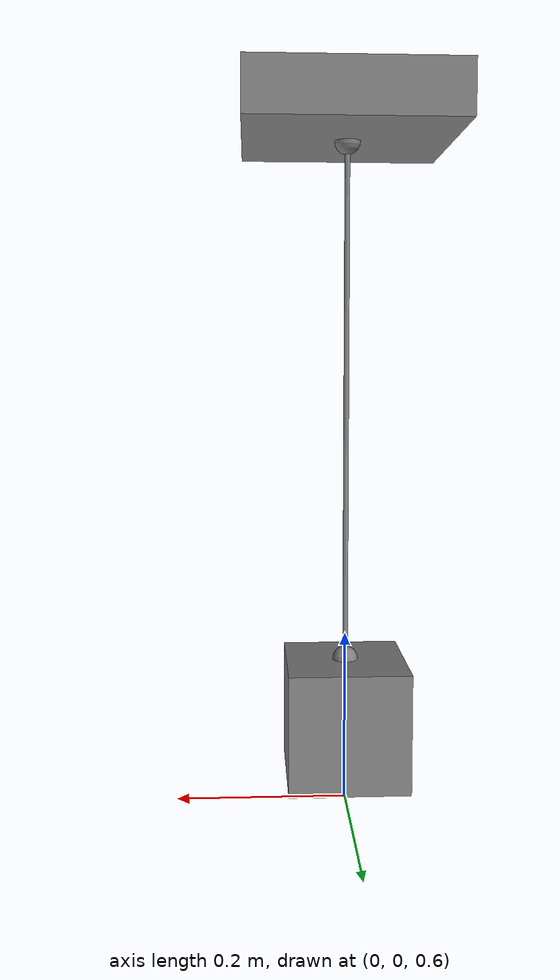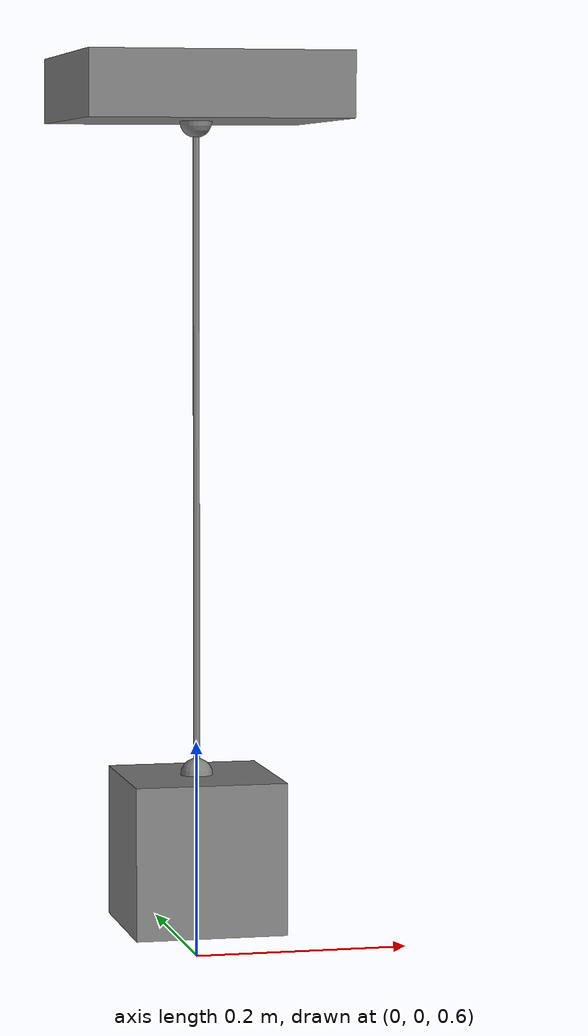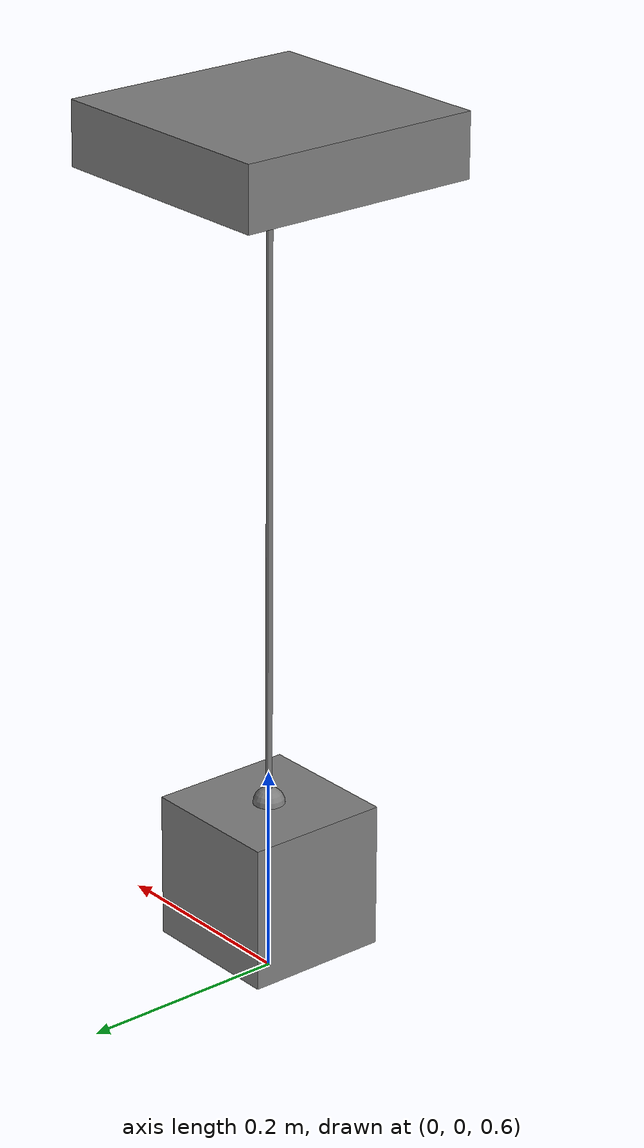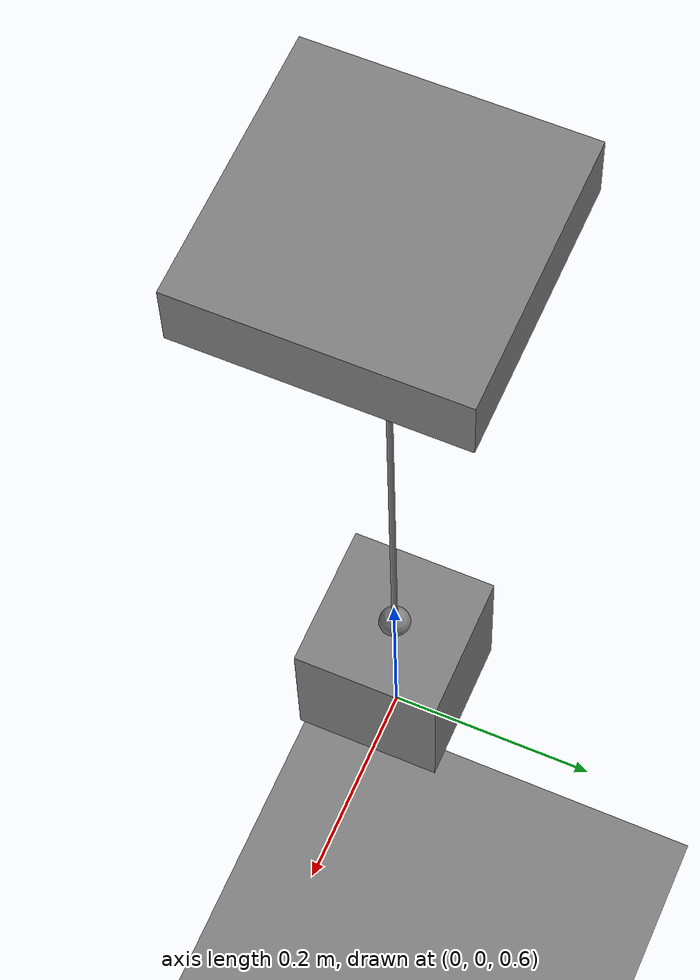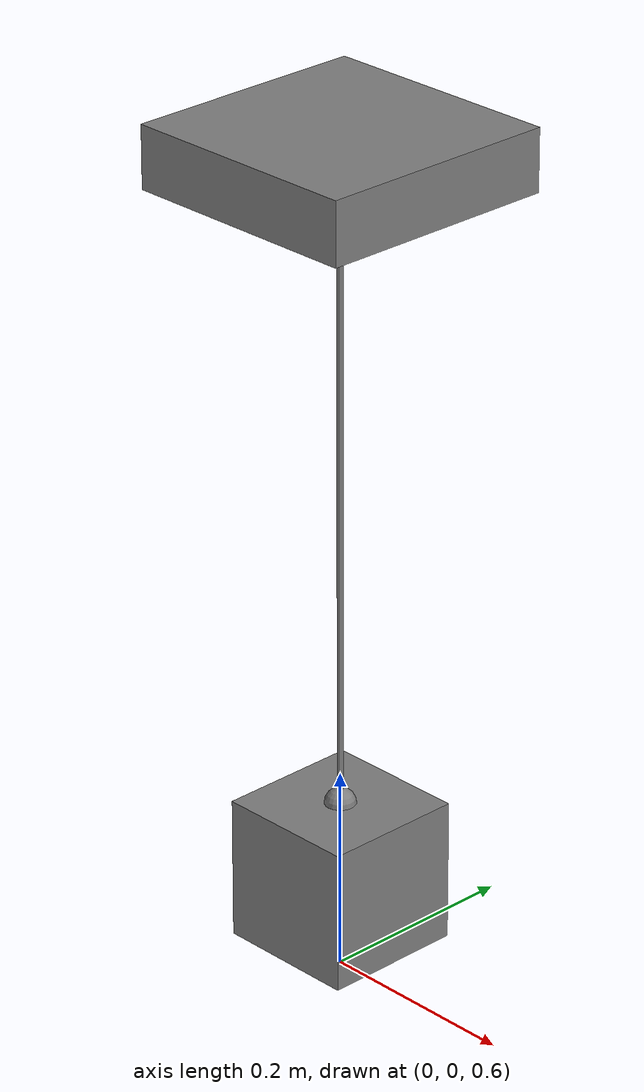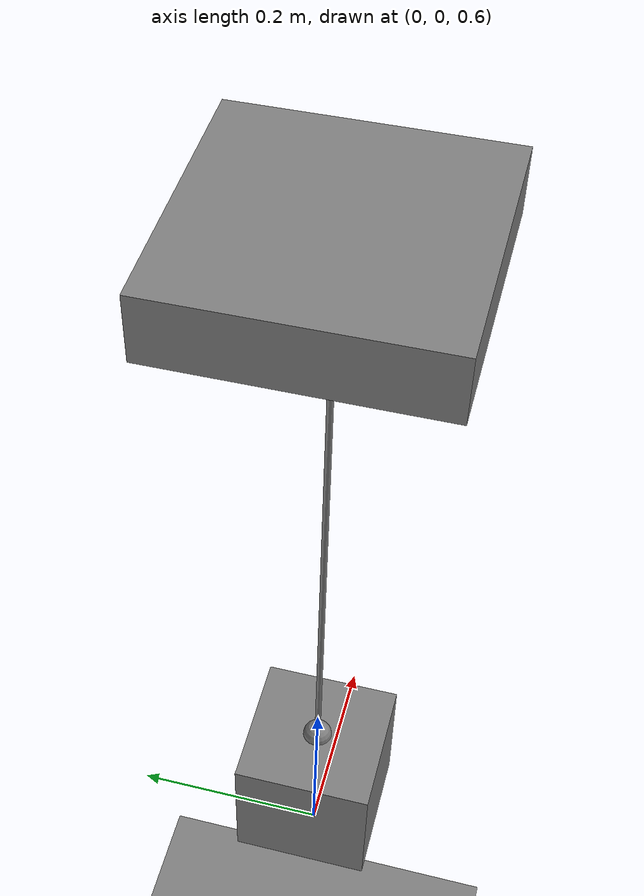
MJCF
<mujoco model="single_pam">

    <option timestep="0.002" gravity="0 0 -9.81"/>

    <worldbody>

        <geom
            name="floor"
            type="plane"
            size="2 2 0.1"
        />

        <!-- fixed anchor -->
        <body name="support" pos="0 0 1.4">

            <geom
                type="box"
                size="0.12 0.12 0.03"
            />

            <site
                name="pam_origin"
                pos="0 0 -0.03"
                size="0.015"
            />

        </body>

        <!-- moving body -->
        <body name="load" pos="0 0 0.7">

            <joint
                name="slider"
                type="slide"
                axis="0 0 1"
                limited="true"
                range="0 0.6"
                damping="0.2"
            />

            <geom
                type="box"
                size="0.07 0.07 0.07"
                mass="1.0"
            />

            <site
                name="pam_insertion"
                pos="0 0 0.07"
                size="0.015"
            />

        </body>

    </worldbody>

    <tendon>

        <spatial name="pam_tendon">
            <site site="pam_origin"/>
            <site site="pam_insertion"/>
        </spatial>

    </tendon>

    <sensor>

        <jointpos
            name="position"
            joint="slider"
        />

        <jointvel
            name="velocity"
            joint="slider"
        />

        <tendonpos
            name="pam_length"
            tendon="pam_tendon"
        />

        <tendonvel
            name="pam_velocity"
            tendon="pam_tendon"
        />

    </sensor>

</mujoco>
